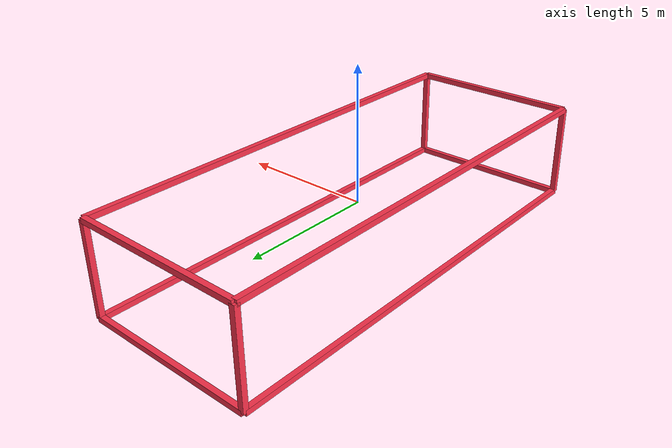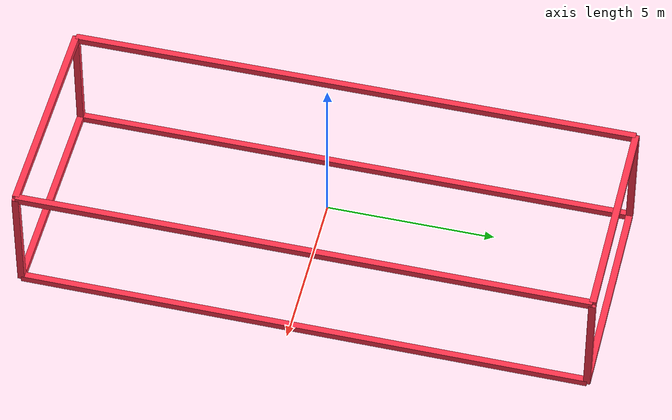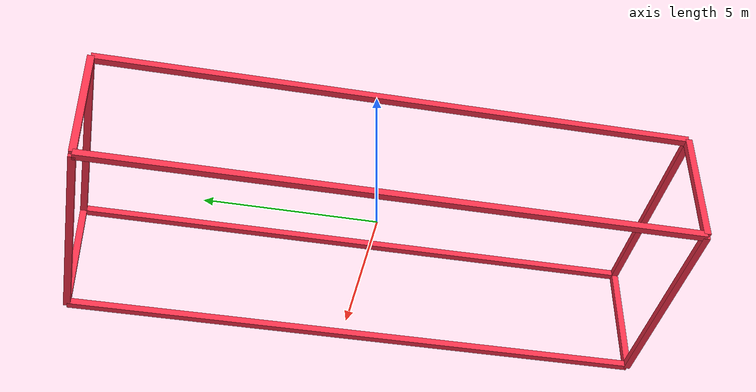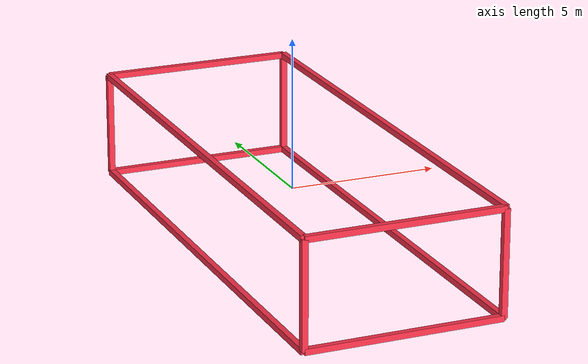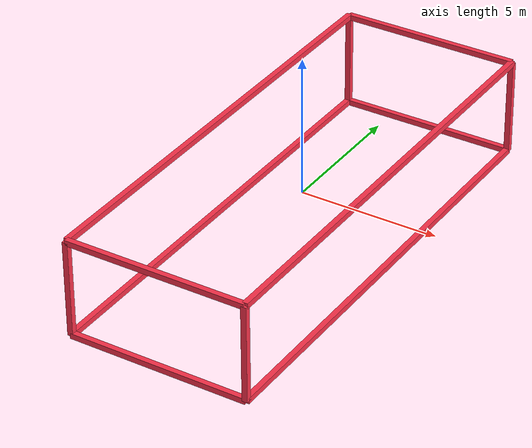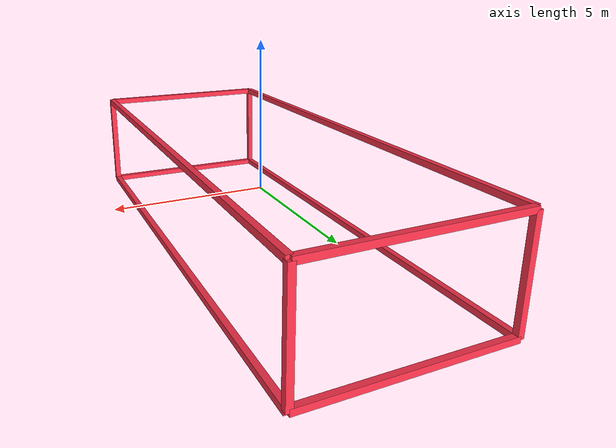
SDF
<?xml version='1.0'?>
<sdf version='1.7'>
  <model name='BoundaryBox'>
    <link name='link_0_clone'>
      <inertial>
        <mass>1</mass>
        <inertia>
          <ixx>0.166667</ixx>
          <ixy>0</ixy>
          <ixz>0</ixz>
          <iyy>0.166667</iyy>
          <iyz>0</iyz>
          <izz>0.166667</izz>
        </inertia>
        <pose>0 0 0 0 -0 0</pose>
      </inertial>
      <pose>0 8.5 -1.75 0 -0 0</pose>
      <gravity>1</gravity>
      <self_collide>0</self_collide>
      <kinematic>0</kinematic>
      <enable_wind>0</enable_wind>
      <visual name='visual'>
        <pose>0 0 0 0 -0 0</pose>
        <geometry>
          <box>
            <size>6.5 0.2 0.2</size>
          </box>
        </geometry>
        <material>
          <lighting>1</lighting>
          <script>
            <uri>file://media/materials/scripts/gazebo.material</uri>
            <name>Gazebo/Grey</name>
          </script>
          <shader type='pixel'>
            <normal_map>__default__</normal_map>
          </shader>
          <ambient>0.3 0.3 0.3 1</ambient>
          <diffuse>1 0.2 0.3 1</diffuse>
          <specular>0.01 0.01 0.01 1</specular>
          <emissive>0 0 0 1</emissive>
        </material>
        <transparency>0</transparency>
        <cast_shadows>1</cast_shadows>
      </visual>
    </link>
    <link name='link_0_clone_clone'>
      <inertial>
        <mass>1</mass>
        <inertia>
          <ixx>0.166667</ixx>
          <ixy>0</ixy>
          <ixz>0</ixz>
          <iyy>0.166667</iyy>
          <iyz>0</iyz>
          <izz>0.166667</izz>
        </inertia>
        <pose>0 0 0 0 -0 0</pose>
      </inertial>
      <pose>0 8.5 1.75 0 -0 0</pose>
      <gravity>1</gravity>
      <self_collide>0</self_collide>
      <kinematic>0</kinematic>
      <enable_wind>0</enable_wind>
      <visual name='visual'>
        <pose>0 0 0 0 -0 0</pose>
        <geometry>
          <box>
            <size>6.5 0.2 0.2</size>
          </box>
        </geometry>
        <material>
          <lighting>1</lighting>
          <script>
            <uri>file://media/materials/scripts/gazebo.material</uri>
            <name>Gazebo/Grey</name>
          </script>
          <shader type='pixel'>
            <normal_map>__default__</normal_map>
          </shader>
          <ambient>0.3 0.3 0.3 1</ambient>
          <diffuse>1 0.2 0.3 1</diffuse>
          <specular>0.01 0.01 0.01 1</specular>
          <emissive>0 0 0 1</emissive>
        </material>
        <transparency>0</transparency>
        <cast_shadows>1</cast_shadows>
      </visual>
    </link>
    <link name='link_0_clone_clone_0'>
      <inertial>
        <mass>1</mass>
        <inertia>
          <ixx>0.166667</ixx>
          <ixy>0</ixy>
          <ixz>0</ixz>
          <iyy>0.166667</iyy>
          <iyz>0</iyz>
          <izz>0.166667</izz>
        </inertia>
        <pose>0 0 0 0 -0 0</pose>
      </inertial>
      <pose>0 -8.5 -1.75 0 -0 0</pose>
      <gravity>1</gravity>
      <self_collide>0</self_collide>
      <kinematic>0</kinematic>
      <enable_wind>0</enable_wind>
      <visual name='visual'>
        <pose>0 0 0 0 -0 0</pose>
        <geometry>
          <box>
            <size>6.5 0.2 0.2</size>
          </box>
        </geometry>
        <material>
          <lighting>1</lighting>
          <script>
            <uri>file://media/materials/scripts/gazebo.material</uri>
            <name>Gazebo/Grey</name>
          </script>
          <shader type='pixel'>
            <normal_map>__default__</normal_map>
          </shader>
          <ambient>0.3 0.3 0.3 1</ambient>
          <diffuse>1 0.2 0.3 1</diffuse>
          <specular>0.01 0.01 0.01 1</specular>
          <emissive>0 0 0 1</emissive>
        </material>
        <transparency>0</transparency>
        <cast_shadows>1</cast_shadows>
      </visual>
    </link>
    <link name='link_0_clone_clone_0_clone'>
      <inertial>
        <mass>1</mass>
        <inertia>
          <ixx>0.166667</ixx>
          <ixy>0</ixy>
          <ixz>0</ixz>
          <iyy>0.166667</iyy>
          <iyz>0</iyz>
          <izz>0.166667</izz>
        </inertia>
        <pose>0 0 0 0 -0 0</pose>
      </inertial>
      <pose>0 -8.5 1.75 0 -0 0</pose>
      <gravity>1</gravity>
      <self_collide>0</self_collide>
      <kinematic>0</kinematic>
      <enable_wind>0</enable_wind>
      <visual name='visual'>
        <pose>0 0 0 0 -0 0</pose>
        <geometry>
          <box>
            <size>6.5 0.2 0.2</size>
          </box>
        </geometry>
        <material>
          <lighting>1</lighting>
          <script>
            <uri>file://media/materials/scripts/gazebo.material</uri>
            <name>Gazebo/Grey</name>
          </script>
          <shader type='pixel'>
            <normal_map>__default__</normal_map>
          </shader>
          <ambient>0.3 0.3 0.3 1</ambient>
          <diffuse>1 0.2 0.3 1</diffuse>
          <specular>0.01 0.01 0.01 1</specular>
          <emissive>0 0 0 1</emissive>
        </material>
        <transparency>0</transparency>
        <cast_shadows>1</cast_shadows>
      </visual>
    </link>
    <link name='link_0_clone_clone_1'>
      <inertial>
        <mass>1</mass>
        <inertia>
          <ixx>0.166667</ixx>
          <ixy>0</ixy>
          <ixz>0</ixz>
          <iyy>0.166667</iyy>
          <iyz>0</iyz>
          <izz>0.166667</izz>
        </inertia>
        <pose>0 0 0 0 -0 0</pose>
      </inertial>
      <pose>3.25 0 -1.75 0 -0 0</pose>
      <gravity>1</gravity>
      <self_collide>0</self_collide>
      <kinematic>0</kinematic>
      <enable_wind>0</enable_wind>
      <visual name='visual'>
        <pose>0 0 0 0 -0 0</pose>
        <geometry>
          <box>
            <size>0.2 17 0.2</size>
          </box>
        </geometry>
        <material>
          <lighting>1</lighting>
          <script>
            <uri>file://media/materials/scripts/gazebo.material</uri>
            <name>Gazebo/Grey</name>
          </script>
          <shader type='pixel'>
            <normal_map>__default__</normal_map>
          </shader>
          <ambient>0.3 0.3 0.3 1</ambient>
          <diffuse>1 0.2 0.3 1</diffuse>
          <specular>0.01 0.01 0.01 1</specular>
          <emissive>0 0 0 1</emissive>
        </material>
        <transparency>0</transparency>
        <cast_shadows>1</cast_shadows>
      </visual>
    </link>
    <link name='link_0_clone_clone_1_clone'>
      <inertial>
        <mass>1</mass>
        <inertia>
          <ixx>0.166667</ixx>
          <ixy>0</ixy>
          <ixz>0</ixz>
          <iyy>0.166667</iyy>
          <iyz>0</iyz>
          <izz>0.166667</izz>
        </inertia>
        <pose>0 0 0 0 -0 0</pose>
      </inertial>
      <pose>-3.25 0 -1.75 0 -0 0</pose>
      <gravity>1</gravity>
      <self_collide>0</self_collide>
      <kinematic>0</kinematic>
      <enable_wind>0</enable_wind>
      <visual name='visual'>
        <pose>0 0 0 0 -0 0</pose>
        <geometry>
          <box>
            <size>0.2 17 0.2</size>
          </box>
        </geometry>
        <material>
          <lighting>1</lighting>
          <script>
            <uri>file://media/materials/scripts/gazebo.material</uri>
            <name>Gazebo/Grey</name>
          </script>
          <shader type='pixel'>
            <normal_map>__default__</normal_map>
          </shader>
          <ambient>0.3 0.3 0.3 1</ambient>
          <diffuse>1 0.2 0.3 1</diffuse>
          <specular>0.01 0.01 0.01 1</specular>
          <emissive>0 0 0 1</emissive>
        </material>
        <transparency>0</transparency>
        <cast_shadows>1</cast_shadows>
      </visual>
    </link>
    <link name='link_0_clone_clone_1_clone_0'>
      <inertial>
        <mass>1</mass>
        <inertia>
          <ixx>0.166667</ixx>
          <ixy>0</ixy>
          <ixz>0</ixz>
          <iyy>0.166667</iyy>
          <iyz>0</iyz>
          <izz>0.166667</izz>
        </inertia>
        <pose>0 0 0 0 -0 0</pose>
      </inertial>
      <pose>3.25 0 1.75 0 -0 0</pose>
      <gravity>1</gravity>
      <self_collide>0</self_collide>
      <kinematic>0</kinematic>
      <enable_wind>0</enable_wind>
      <visual name='visual'>
        <pose>0 0 0 0 -0 0</pose>
        <geometry>
          <box>
            <size>0.2 17 0.2</size>
          </box>
        </geometry>
        <material>
          <lighting>1</lighting>
          <script>
            <uri>file://media/materials/scripts/gazebo.material</uri>
            <name>Gazebo/Grey</name>
          </script>
          <shader type='pixel'>
            <normal_map>__default__</normal_map>
          </shader>
          <ambient>0.3 0.3 0.3 1</ambient>
          <diffuse>1 0.2 0.3 1</diffuse>
          <specular>0.01 0.01 0.01 1</specular>
          <emissive>0 0 0 1</emissive>
        </material>
        <transparency>0</transparency>
        <cast_shadows>1</cast_shadows>
      </visual>
    </link>
    <link name='link_0_clone_clone_1_clone_clone'>
      <inertial>
        <mass>1</mass>
        <inertia>
          <ixx>0.166667</ixx>
          <ixy>0</ixy>
          <ixz>0</ixz>
          <iyy>0.166667</iyy>
          <iyz>0</iyz>
          <izz>0.166667</izz>
        </inertia>
        <pose>0 0 0 0 -0 0</pose>
      </inertial>
      <pose>-3.25 0 1.75 0 -0 0</pose>
      <gravity>1</gravity>
      <self_collide>0</self_collide>
      <kinematic>0</kinematic>
      <enable_wind>0</enable_wind>
      <visual name='visual'>
        <pose>0 0 0 0 -0 0</pose>
        <geometry>
          <box>
            <size>0.2 17 0.2</size>
          </box>
        </geometry>
        <material>
          <lighting>1</lighting>
          <script>
            <uri>file://media/materials/scripts/gazebo.material</uri>
            <name>Gazebo/Grey</name>
          </script>
          <shader type='pixel'>
            <normal_map>__default__</normal_map>
          </shader>
          <ambient>0.3 0.3 0.3 1</ambient>
          <diffuse>1 0.2 0.3 1</diffuse>
          <specular>0.01 0.01 0.01 1</specular>
          <emissive>0 0 0 1</emissive>
        </material>
        <transparency>0</transparency>
        <cast_shadows>1</cast_shadows>
      </visual>
    </link>
    <link name='link_0_clone_clone_2'>
      <inertial>
        <mass>1</mass>
        <inertia>
          <ixx>0.166667</ixx>
          <ixy>0</ixy>
          <ixz>0</ixz>
          <iyy>0.166667</iyy>
          <iyz>0</iyz>
          <izz>0.166667</izz>
        </inertia>
        <pose>0 0 0 0 -0 0</pose>
      </inertial>
      <pose>3.25 8.5 0 0 -0 0</pose>
      <gravity>1</gravity>
      <self_collide>0</self_collide>
      <kinematic>0</kinematic>
      <enable_wind>0</enable_wind>
      <visual name='visual'>
        <pose>0 0 0 0 -0 0</pose>
        <geometry>
          <box>
            <size>0.2 0.2 3.5</size>
          </box>
        </geometry>
        <material>
          <lighting>1</lighting>
          <script>
            <uri>file://media/materials/scripts/gazebo.material</uri>
            <name>Gazebo/Grey</name>
          </script>
          <shader type='pixel'>
            <normal_map>__default__</normal_map>
          </shader>
          <ambient>0.3 0.3 0.3 1</ambient>
          <diffuse>1 0.2 0.3 1</diffuse>
          <specular>0.01 0.01 0.01 1</specular>
          <emissive>0 0 0 1</emissive>
        </material>
        <transparency>0</transparency>
        <cast_shadows>1</cast_shadows>
      </visual>
    </link>
    <link name='link_0_clone_clone_2_clone'>
      <inertial>
        <mass>1</mass>
        <inertia>
          <ixx>0.166667</ixx>
          <ixy>0</ixy>
          <ixz>0</ixz>
          <iyy>0.166667</iyy>
          <iyz>0</iyz>
          <izz>0.166667</izz>
        </inertia>
        <pose>0 0 0 0 -0 0</pose>
      </inertial>
      <pose>-3.25 8.5 0 0 -0 0</pose>
      <gravity>1</gravity>
      <self_collide>0</self_collide>
      <kinematic>0</kinematic>
      <enable_wind>0</enable_wind>
      <visual name='visual'>
        <pose>0 0 0 0 -0 0</pose>
        <geometry>
          <box>
            <size>0.2 0.2 3.5</size>
          </box>
        </geometry>
        <material>
          <lighting>1</lighting>
          <script>
            <uri>file://media/materials/scripts/gazebo.material</uri>
            <name>Gazebo/Grey</name>
          </script>
          <shader type='pixel'>
            <normal_map>__default__</normal_map>
          </shader>
          <ambient>0.3 0.3 0.3 1</ambient>
          <diffuse>1 0.2 0.3 1</diffuse>
          <specular>0.01 0.01 0.01 1</specular>
          <emissive>0 0 0 1</emissive>
        </material>
        <transparency>0</transparency>
        <cast_shadows>1</cast_shadows>
      </visual>
    </link>
    <link name='link_0_clone_clone_2_clone_clone'>
      <inertial>
        <mass>1</mass>
        <inertia>
          <ixx>0.166667</ixx>
          <ixy>0</ixy>
          <ixz>0</ixz>
          <iyy>0.166667</iyy>
          <iyz>0</iyz>
          <izz>0.166667</izz>
        </inertia>
        <pose>0 0 0 0 -0 0</pose>
      </inertial>
      <pose>-3.25 -8.5 0 0 -0 0</pose>
      <gravity>1</gravity>
      <self_collide>0</self_collide>
      <kinematic>0</kinematic>
      <enable_wind>0</enable_wind>
      <visual name='visual'>
        <pose>0 0 0 0 -0 0</pose>
        <geometry>
          <box>
            <size>0.2 0.2 3.5</size>
          </box>
        </geometry>
        <material>
          <lighting>1</lighting>
          <script>
            <uri>file://media/materials/scripts/gazebo.material</uri>
            <name>Gazebo/Grey</name>
          </script>
          <shader type='pixel'>
            <normal_map>__default__</normal_map>
          </shader>
          <ambient>0.3 0.3 0.3 1</ambient>
          <diffuse>1 0.2 0.3 1</diffuse>
          <specular>0.01 0.01 0.01 1</specular>
          <emissive>0 0 0 1</emissive>
        </material>
        <transparency>0</transparency>
        <cast_shadows>1</cast_shadows>
      </visual>
    </link>
    <link name='link_0_clone_clone_2_clone_clone_clone'>
      <inertial>
        <mass>1</mass>
        <inertia>
          <ixx>0.166667</ixx>
          <ixy>0</ixy>
          <ixz>0</ixz>
          <iyy>0.166667</iyy>
          <iyz>0</iyz>
          <izz>0.166667</izz>
        </inertia>
        <pose>0 0 0 0 -0 0</pose>
      </inertial>
      <pose>3.25 -8.5 0 0 -0 0</pose>
      <gravity>1</gravity>
      <self_collide>0</self_collide>
      <kinematic>0</kinematic>
      <enable_wind>0</enable_wind>
      <visual name='visual'>
        <pose>0 0 0 0 -0 0</pose>
        <geometry>
          <box>
            <size>0.2 0.2 3.5</size>
          </box>
        </geometry>
        <material>
          <lighting>1</lighting>
          <script>
            <uri>file://media/materials/scripts/gazebo.material</uri>
            <name>Gazebo/Grey</name>
          </script>
          <shader type='pixel'>
            <normal_map>__default__</normal_map>
          </shader>
          <ambient>0.3 0.3 0.3 1</ambient>
          <diffuse>1 0.2 0.3 1</diffuse>
          <specular>0.01 0.01 0.01 1</specular>
          <emissive>0 0 0 1</emissive>
        </material>
        <transparency>0</transparency>
        <cast_shadows>1</cast_shadows>
      </visual>
    </link>
    <static>1</static>
    <allow_auto_disable>1</allow_auto_disable>
  </model>
</sdf>
